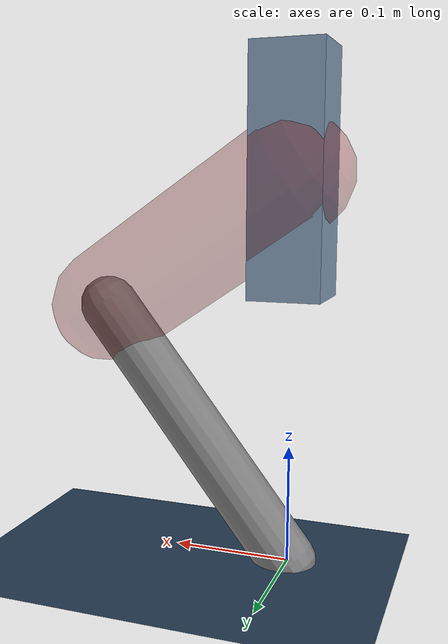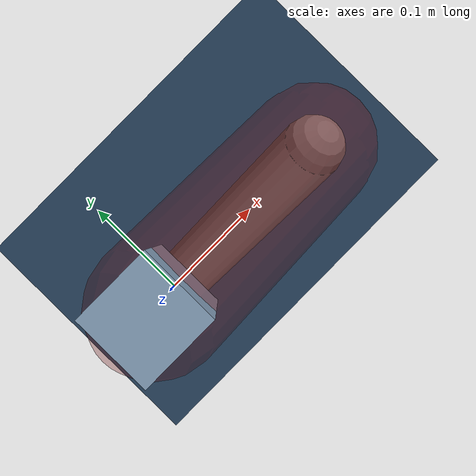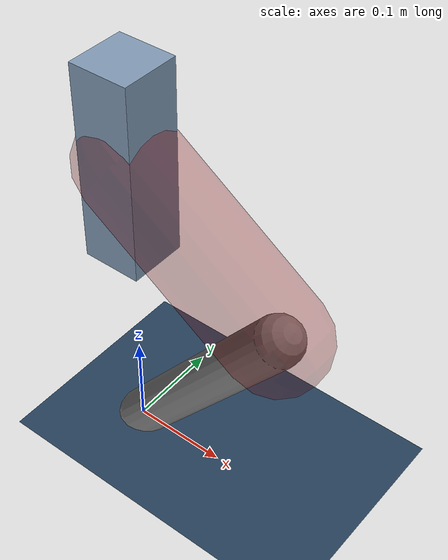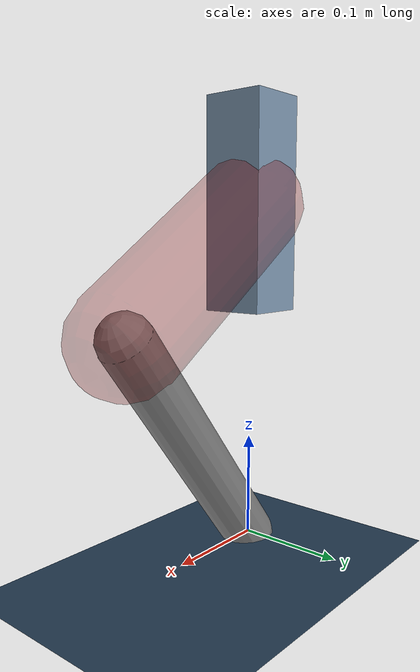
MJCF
<mujoco model="Hopper2D">
	<compiler inertiafromgeom="true" angle="radian" />
	<option timestep="0.001" integrator="implicit" cone="elliptic" solver="Newton" tolerance="1e-10" />

	<default>
		<geom contype="1" conaffinity="1" condim="3" friction="2 0.005 0.0001" solref="0.005 1" />
		<joint limited="true" damping="0.1" />
	</default>

	<asset>
		<texture name="skybox" type="skybox" builtin="gradient" rgb1=".4 .6 .8" rgb2="0 0 0" width="800" height="800" />
		<texture name="grid" type="2d" builtin="checker" rgb1=".1 .2 .3" rgb2=".2 .3 .4" width="300" height="300" mark="edge" markrgb=".2 .3 .4" />
		<material name="ground" texture="grid" texrepeat="1 1" texuniform="true" reflectance="0.1" />
		<material name="leg" rgba="0.5 0.6 0.7 1" />
	</asset>

	<worldbody>

		<geom name="floor" type="plane" size="5 5 0.25" material="ground" />

		<light directional="false" diffuse="0.8 0.8 0.8" specular="0.3 0.3 0.3" pos="0 0 2" dir="0 0 -1" />
		<light mode="targetbodycom" target="base" directional="false" diffuse="0.8 0.8 0.8" specular="0.3 0.3 0.3" pos="0 0 2" dir="0 0 -1" />

		<camera name="fixed" pos="0 -2 1" xyaxes="1 0 0 0 0 1" />
		<camera name="tracking" mode="trackcom" pos="0 -3 1" />

		<body name="root" pos="0 0 0.3265549618970077">
			<joint name="slide_x" type="slide" axis="1 0 0" range="-100 100" />
			<joint name="slide_z" type="slide" axis="0 0 1" range="0 10" />

			<body name="base" pos="0 0 0">
				<geom name="torso" type="box" size="0.03 0.03 0.1" mass="3.0090000000000003" material="leg" />

				<body name="link1" pos="0 0 0" euler="0 0.5994517740381329 0">
					<joint type="hinge" axis="0 -1 0" pos="0 0 0" name="hinge1" limited="true" range="-3.14 3.14" stiffness="0" damping="0.1" />
					<geom name="thigh" type="capsule" fromto="0 0 0 0.200052679779176 0 0" size="0.05" rgba="0.5 0 0 0.3" mass="0.72973169944794" />

					<body name="link2" pos="0.200052679779176 0 0" euler="0 1.6293812067123299 0">
						<joint type="hinge" axis="0 -1 0" pos="0 0 0" name="hinge2" limited="true" range="-3.14 3.14" stiffness="0" damping="0.1" />
						<geom name="shank" type="capsule" fromto="0 0 0 0.2700818386983617 0 0" size="0.025" mass="0.45897365482852553" />

					</body>
				</body>
			</body>
		</body>
	</worldbody>

	<actuator>
		<motor name="torque1" joint="hinge1" ctrlrange="-117.01884547068155 117.01884547068155" ctrllimited="true" gear="1" />
		<motor name="torque2" joint="hinge2" ctrlrange="-100.85961505726044 100.85961505726044" ctrllimited="true" gear="1" />
	</actuator>
</mujoco>
